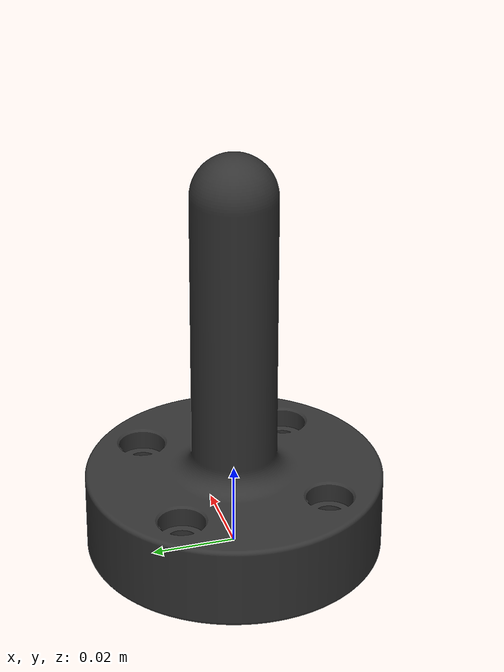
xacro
<?xml version="1.0"?>
<robot xmlns:xacro="http://www.ros.org/wiki/xacro" name="finger_tool">
    <xacro:property name="PI" value="3.14159265359" />
    <xacro:property name="scale_factor" value="0.001" />
    <!-- Base link -->
    <link name="tool_base">
        <origin xyz="0 0 0" rpy="0 0 0"/>
        <visual>
            <origin xyz="0 0 0" rpy="${PI/2} 0.0 0.0"/>
            <geometry>
                <mesh filename="package://robot_arm_motion/models/objects/meshes/fingerTool.STL" scale="${scale_factor} ${scale_factor} ${scale_factor}"/>
            </geometry>
            <material name="black">
                <color rgba="0.2 0.2 0.2 1"/>
            </material>
        </visual>
    </link>

</robot>
